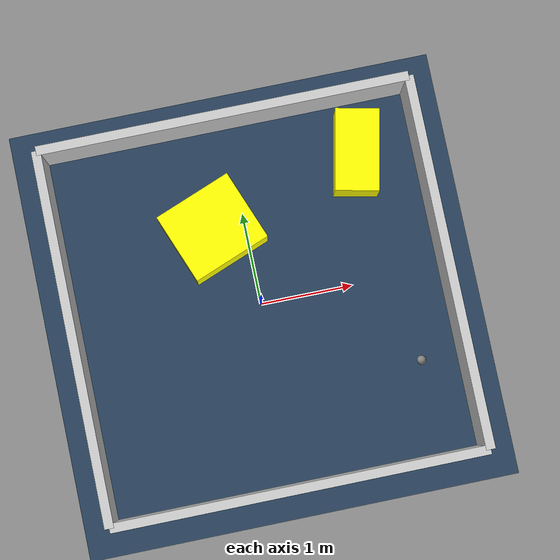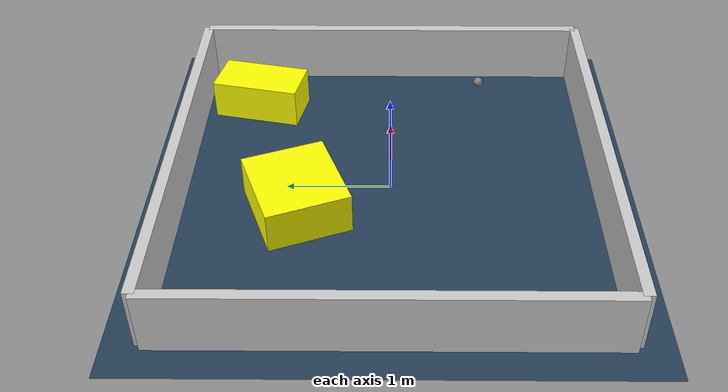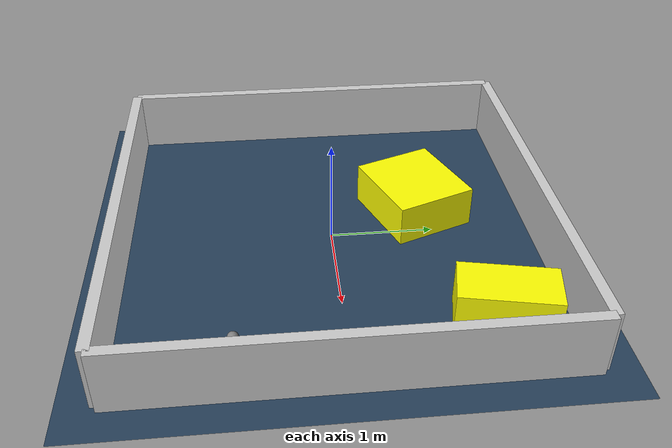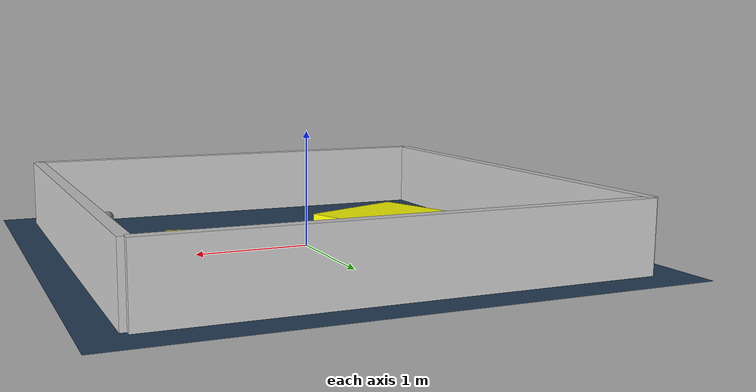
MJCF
<?xml version="1.0" ?>
<mujoco model="generated_environment">
  <option timestep="0.01" integrator="RK4" cone="elliptic"/>
  <default>
    <geom density="1"/>
  </default>
  <asset>
    <texture builtin="gradient" height="3072" rgb1="0.3 0.5 0.7" rgb2="0 0 0" type="skybox" width="512"/>
    <texture builtin="checker" height="300" mark="edge" markrgb="0.8 0.8 0.8" name="groundplane" rgb1="0.2 0.3 0.4" rgb2="0.1 0.2 0.3" type="2d" width="300"/>
    <material name="groundplane" reflectance="0.2" texrepeat="5 5" texture="groundplane" texuniform="true"/>
    <material name="robot" rgba="0.0 1.0 0.0 1"/>
  </asset>
  <worldbody>
    <light dir="0 0 -1" directional="true" pos="0 0 1.5"/>
    <geom condim="4" friction="1.0 0.005 0.001" material="groundplane" name="floor" size="0 0 0.05" type="plane"/>
    <body name="walls">
      <geom name="wall_1" condim="4" pos="-2.0 0.0 0.3" rgba="0.800000011920929 0.800000011920929 0.800000011920929 1.0" size="0.05 2.0 0.3" type="box"/>
      <geom name="wall_2" condim="4" pos="2.0 0.0 0.3" rgba="0.800000011920929 0.800000011920929 0.800000011920929 1.0" size="0.05 2.0 0.3" type="box"/>
      <geom name="wall_3" condim="4" pos="0.0 -2.0 0.3" rgba="0.800000011920929 0.800000011920929 0.800000011920929 1.0" size="2.0 0.05 0.3" type="box"/>
      <geom name="wall_4" condim="4" pos="0.0 2.0 0.3" rgba="0.800000011920929 0.800000011920929 0.800000011920929 1.0" size="2.0 0.05 0.3" type="box"/>
    </body>
    <body name="robot">
      <joint name="joint_x" type="slide" pos="0 0 0" axis="1 0 0"/>
      <joint name="joint_y" type="slide" pos="0 0 0" axis="0 1 0"/>
      <geom name="robot" type="sphere" pos="1.5430868495731986 -0.9461102613336766 0.2" size="0.05" mass="5." friction="1.0 0.005 0.0001" condim="4"/>
      <site name="sensor_ball"/>
    </body>
    <body name="obstacle_1_movable">
      <geom name="obstacle_1_movable" condim="4" pos="-0.34924683744872853 0.8713551975146807 0.2" euler="0 0 201.08819450644637" friction="1.0 0.005 0.001" rgba="1 1 0 1" size="0.4418327609524084 0.4009703821561074 0.2" type="box" mass="0.1"/>
      <joint type="free"/>
    </body>
    <body name="obstacle_2_movable">
      <geom name="obstacle_2_movable" condim="4" pos="1.327816556805839 1.3751544129124684 0.2" euler="0 0 347.9564519776637" friction="1.0 0.005 0.001" rgba="1 1 0 1" size="0.23683514009691062 0.4436735178965626 0.2" type="box" mass="0.1"/>
      <joint type="free"/>
    </body>
  </worldbody>
  <actuator>
    <motor name="actuator_x" joint="joint_x" gear="1" ctrlrange="-1 1"/>
    <motor name="actuator_y" joint="joint_y" gear="1" ctrlrange="-1 1"/>
  </actuator>
</mujoco>
